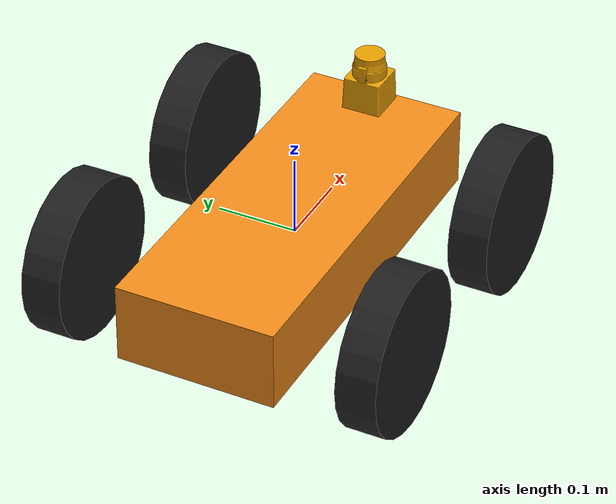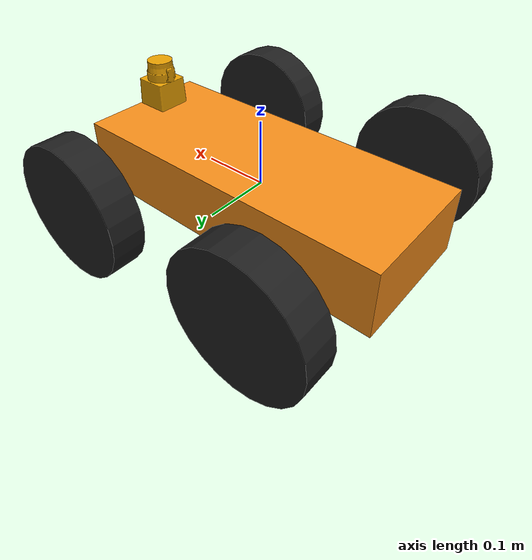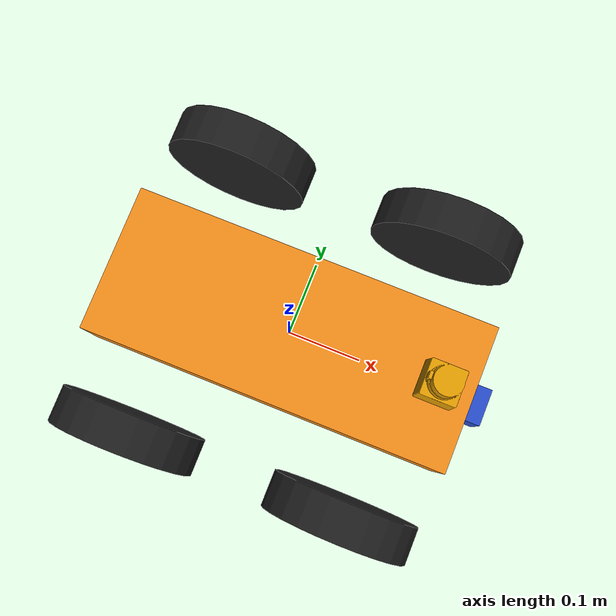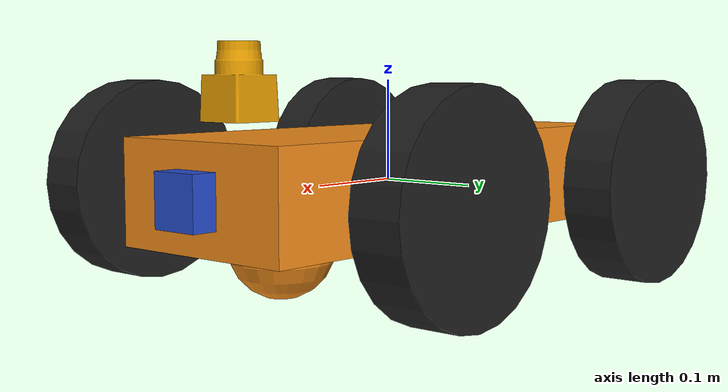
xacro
<robot name="my_robot" xmlns:xacro="http://www.ros.org/wiki/xacro">
  <xacro:include filename="$(find my_robot)/urdf/my_robot.gazebo" />
  <link name="robot_footprint"></link>

  <joint name="robot_footprint_joint" type="fixed">
    <origin xyz="0 0 0" rpy="0 0 0" />
    <parent link="robot_footprint"/>
    <child link="chassis" />
  </joint>

  <link name='chassis'>
    <pose>0 0 0.1 0 0 0</pose>

    <inertial>
      <mass value="15.0"/>
      <origin xyz="0 0 0" rpy=" 0 0 0"/>
      <inertia
          ixx="0.1" ixy="0" ixz="0"
          iyy="0.1" iyz="0"
          izz="0.1"
      />
    </inertial>

    <collision name='collision'>
      <origin xyz="0 0 0" rpy=" 0 0 0"/>
      <geometry>
        <box size=".5 .2 .1"/>
      </geometry>
    </collision>

    <visual name='chassis_visual'>
      <origin xyz="0 0 0" rpy=" 0 0 0"/>
      <geometry>
        <box size=".5 .2 .1"/>
      </geometry>
    </visual>

    <collision name='back_caster_collision'>
      <origin xyz="-0.15 0 -0.05" rpy=" 0 0 0"/>
      <geometry>
        <sphere radius="0.0499"/>
      </geometry>
    </collision>

    <visual name='back_caster_visual'>
      <origin xyz="-0.15 0 -0.05" rpy=" 0 0 0"/>
      <geometry>
        <sphere radius="0.05"/>
      </geometry>
    </visual>

    <collision name='front_caster_collision'>
      <origin xyz="0.15 0 -0.05" rpy=" 0 0 0"/>
      <geometry>
        <sphere radius="0.0499"/>
      </geometry>
    </collision>

    <visual name='front_caster_visual'>
      <origin xyz="0.15 0 -0.05" rpy=" 0 0 0"/>
      <geometry>
        <sphere radius="0.05"/>
      </geometry>
    </visual>
  </link>

  <joint type="continuous" name="left_wheel_hinge">
    <origin xyz="0.15 0.2 0" rpy="0 0 0"/>
    <child link="left_wheel"/>
    <parent link="chassis"/>
    <axis xyz="0 1 0" rpy="0 0 0"/>
    <limit effort="10000" velocity="1000"/>
    <dynamics damping="1.0" friction="1.0"/>
    <commandTopic>cmd_vel</commandTopic>
  </joint>
  <link name="left_wheel">
    <inertial>
      <mass value="5.0"/>
      <origin xyz="0 0 0" rpy=" 0 1.57079633 1.57079633"/>
      <inertia
          ixx="0.1" ixy="0" ixz="0"
          iyy="0.1" iyz="0"
          izz="0.1"
      />
    </inertial>
    <collision name='left_wheel_collision'>
      <origin xyz="0 0 0" rpy=" 0 1.57079633 1.57079633"/>
      <geometry>
        <cylinder radius="0.1" length="0.05"/>
      </geometry>
    </collision>

    <visual name='left_wheel_visual'>
      <origin xyz="0 0 0" rpy=" 0 1.57079633 1.57079633"/>
      <geometry>
        <cylinder radius="0.1" length="0.05"/>
      </geometry>
    </visual>
  </link>
  <!-- Left Rear Dummy wheel-->
  <joint type="continuous" name="left_rear_wheel_hinge">
    <origin xyz="-0.15 0.2 0" rpy="0 0 0"/>
    <child link="left_rear_wheel"/>
    <parent link="chassis"/>
    <axis xyz="0 1 0" rpy="0 0 0"/>
    <limit effort="10000" velocity="1000"/>
    <dynamics damping="1.0" friction="1.0"/>
  </joint>
  <link name="left_rear_wheel">
    <inertial>
      <mass value="5.0"/>
      <origin xyz="0 0 0" rpy=" 0 1.57079633 1.57079633"/>
      <inertia
          ixx="0.1" ixy="0" ixz="0"
          iyy="0.1" iyz="0"
          izz="0.1"
      />
    </inertial>
    <collision name='left_rear_wheel_collision'>
      <origin xyz="0 0 0" rpy=" 0 1.57079633 1.57079633"/>
      <geometry>
        <cylinder radius="0.1" length="0.05"/>
      </geometry>
    </collision>

    <visual name='left_rear_wheel_visual'>
      <origin xyz="0 0 0" rpy=" 0 1.57079633 1.57079633"/>
      <geometry>
        <cylinder radius="0.1" length="0.05"/>
      </geometry>
    </visual>
  </link>

  <!-- RIGHT WHEEL -->

  <joint name="right_wheel_hinge" type="continuous">
    <parent link="chassis"/>
    <child link="right_wheel"/>
    <origin xyz="0.15 -0.2 0" rpy="0 0 0"/>
    <axis xyz="0 1 0"/>
    <limit effort="10000" velocity="1000"/>
    <dynamics damping="1.0" friction="1.0"/>
  </joint>

  <link name="right_wheel">
    <inertial>
      <mass value="5.0"/>
      <origin xyz="0 0 0" rpy="0 1.57079633 1.57079633"/>
      <inertia
          ixx="0.1" ixy="0" ixz="0"
          iyy="0.1" iyz="0"
          izz="0.1"
      />
    </inertial>
    <collision name="right_wheel_collision">
      <origin xyz="0 0 0" rpy="0 1.57079633 1.57079633"/>
      <geometry>
        <cylinder radius="0.1" length="0.05"/>
      </geometry>
    </collision>

    <visual name="right_wheel_visual">
      <origin xyz="0 0 0" rpy="0 1.57079633 1.57079633"/>
      <geometry>
        <cylinder radius="0.1" length="0.05"/>
      </geometry>
    </visual>
  </link>

   <!-- Rear Dummy RIGHT WHEEL -->

  <joint name="right_rear_wheel_hinge" type="continuous">
    <parent link="chassis"/>
    <child link="right_rear_wheel"/>
    <origin xyz="-0.15 -0.2 0" rpy="0 0 0"/>
    <axis xyz="0 1 0"/>
    <limit effort="10000" velocity="1000"/>
    <dynamics damping="1.0" friction="1.0"/>
  </joint>

  <link name="right_rear_wheel">
    <inertial>
      <mass value="5.0"/>
      <origin xyz="0 0 0" rpy="0 1.57079633 1.57079633"/>
      <inertia
          ixx="0.1" ixy="0" ixz="0"
          iyy="0.1" iyz="0"
          izz="0.1"
      />
    </inertial>
    <collision name="right_rear_wheel_collision">
      <origin xyz="0 0 0" rpy="0 1.57079633 1.57079633"/>
      <geometry>
        <cylinder radius="0.1" length="0.05"/>
      </geometry>
    </collision>

    <visual name="right_rear_wheel_visual">
      <origin xyz="0 0 0" rpy="0 1.57079633 1.57079633"/>
      <geometry>
        <cylinder radius="0.1" length="0.05"/>
      </geometry>
    </visual>
  </link>

  <!--\template for camera structure-->
  <link name="camera">
    <visual>
      <geometry>
        <box size="0.05 0.05 0.05"/>
      </geometry>
    </visual>
    <collosion>
      <geometry>
        <box size="0.05 0.05 0.05"/>
      </geometry>
    </collosion>
    <inertial>
      <mass value="0.1"/>
      <origin xyz="0 0 0" rpy=" 0 0 0"/>
      <inertia
          ixx="1e-6" ixy="0" ixz="0"
          iyy="1e-6" iyz="0"
          izz="1e-6"
      />
    </inertial>
  </link>

  <joint name="camera_joint" type="fixed">
    <origin xyz="0.25 0 0" rpy="0 0 0" />
    <axis xyz="0 1 0" rpy="0 0 0"/>
    <parent link="chassis"/>
    <child link="camera" />
    <imageTopicName>rgb/image_raw</imageTopicName>
  </joint>

  <!-- RGBD Camera -->
  <link name="camera_link_optical">
  </link>

  <joint name="camera+optical_joint" type="fixed">
    <origin xyz="0 0 0" rpy="-1.57079633 0 -1.57079633"/>
    <parent link="camera"/>
    <child link="camera_link_optical"/>
  </joint>

  <!--\template for LIDAR structure-->
  <link name="hokuyo">
    <visual>
      <geometry>
        <mesh filename= "package://my_robot/meshes/hokuyo.dae"/>
      </geometry>
    </visual>
    <collosion>
      <geometry>
        <box size="0.1 0.1 0.1"/>
      </geometry>
    </collosion>
    <inertial>
      <mass value="1e-5"/>
      <origin xyz="0 0 0" rpy=" 0 0 0"/>
      <inertia
          ixx="1e-6" ixy="0" ixz="0"
          iyy="1e-6" iyz="0"
          izz="1e-6"
      />
    </inertial>
  </link>

  <joint name="hokuyo_joint" type="fixed">
    <origin xyz="0.2 0 0.1" rpy="0 0 0" />
    <axis xyz="0 1 0" rpy="0 0 0"/>
    <parent link="chassis"/>
    <child link="hokuyo" />
    <topicName>/scan</topicName>
  </joint>

  <gazebo reference="chassis">
	<material>Gazebo/Orange</material>
  </gazebo>
  <gazebo reference="left_wheel">
	<material>Gazebo/Black</material>
  </gazebo>
  <gazebo reference="right_wheel">
	<material>Gazebo/Black</material>
  </gazebo>
  <gazebo reference="left_rear_wheel">
	<material>Gazebo/Black</material>
  </gazebo>
  <gazebo reference="right_rear_wheel">
	<material>Gazebo/Black</material>
  </gazebo>
  <gazebo reference="camera">
	<material>Gazebo/Blue</material>
  </gazebo>
</robot>
